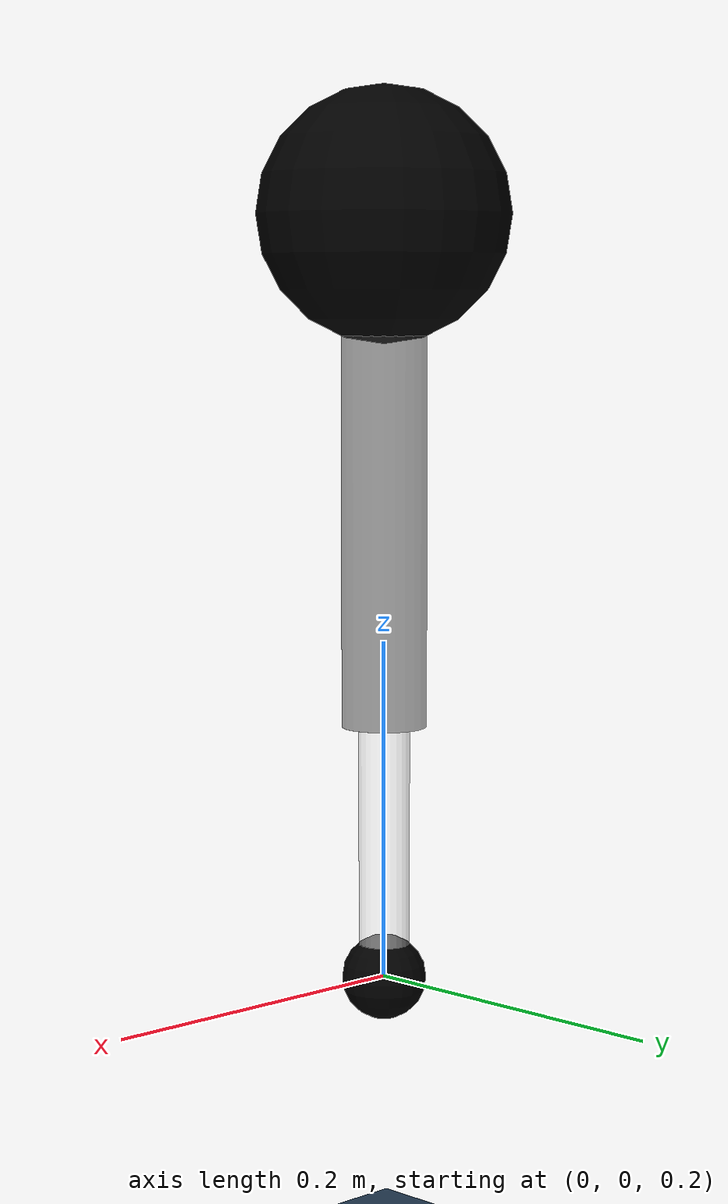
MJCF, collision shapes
<?xml version="1.0" encoding="utf-8"?>
<mujoco model="3D_SLIP">

    <!-- TODO: mess with iterations and ls_iterations -->
    <option timestep="0.002" iterations="3" ls_iterations="5" solver="Newton">
        <flag eulerdamp="disable"/>
    </option>

    <!-- Specify the light settings -->
    <visual>
        <headlight diffuse="0.6 0.6 0.6" ambient="0.3 0.3 0.3" specular="0 0 0"/>
        <rgba haze="0.15 0.25 0.35 1"/>
        <global azimuth="150" elevation="-20" offwidth="1920" offheight="1080"/>
    </visual>

    <!-- List the location of all meshes -->
    <asset>
        <mesh file="./meshes/Body.STL" name="com"/>
        <texture type="skybox" builtin="gradient" rgb1="0.3 0.5 0.7" rgb2="0 0 0" width="512" height="3072"/>
        <texture type="2d" name="groundplane" builtin="checker" mark="edge" rgb1="0.2 0.3 0.4" rgb2="0.1 0.2 0.3"
        markrgb="0.8 0.8 0.8" width="300" height="300"/>
        <material name="groundplane" texture="groundplane" texuniform="true" texrepeat="5 5" reflectance="0.2"/>
    </asset>

    <!-- Set the angles to be in radians -->
    <compiler angle="radian" autolimits="true" eulerseq="zyx"/>

    <!-- Default properties -->
    <default>
        <geom conaffinity="1" contype="1" density="0.5" friction="0.8 0.8 0.8"/>
        <default class="visual">
            <geom conaffinity="0" contype="0"/>
        </default>
    </default>

    <!-- Bodies -->
    <worldbody>
        <!-- Ground -->
        <geom name="plane" type="plane" size="0.0 0.0 0.125" material="groundplane"/>

        <!-- COM Body -->
        <body name="com" pos="0 0 0.65">
            <camera name="track" mode="targetbody" pos="0 -3 0.3" xyaxes="1 0 0 0 0 1" target="com"/>
            <joint name="root_x" type="slide" axis="1 0 0"/>
            <joint name="root_y" type="slide" axis="0 1 0"/>
            <joint name="root_z" type="slide" axis="0 0 1"/>

            <!-- A light that tracks the CoM -->
            <light pos="0 0 3" dir="0 0 -1" directional="false" mode="trackcom"/>

            <!-- ixx iyy izz ixy ixz iyz-->

            <!-- CoM has sphere collisions but a fancy mesh visual-->
            <geom name="com_mesh" class="visual" mesh="com" type="mesh" rgba="1.0 0.424 0.047 1.0" />
            <geom name="com_collision" type="sphere" density="1.0" size="0.075" rgba="0.0 0.0 0.0 0.0" />

            <!-- Upper Leg -->
            <body name="leg_upper" pos="0 0 -0.15">
                <joint name="leg_roll" axis="1 0 0" pos="0 0 0.15" limited="true" range="-1.2 1.2"/>
                <joint name="leg_pitch" axis="0 1 0" pos="0 0 0.15" limited="true" range="-1.2 1.2"/>
                <geom name="leg_upper" class="visual" type="cylinder" density="0.5" size="0.025 0.15" rgba="0.2 0.2 0.2 0.5"/>

                <!-- Lower Leg -->
                <body name="leg_lower" pos="0 0 -0.15">
                    <!-- Spring stiffness here? -->
                    <joint name="leg_prismatic" axis="0 0 1" type="slide" limited="true" range="-0.15 0.15"/>
                    <geom name="leg_lower" class="visual" type="cylinder" density="0.5" size="0.015 0.15" rgba="1.0 1.0 1.0 0.5"/>

                    <!-- Foot -->
                    <body name="foot" pos="0 0 -0.15">
                        <geom name="foot_sphere" type="sphere" density="0.5" size="0.025" rgba="0 0 0 1.0"/>
                    </body>

                </body>
            </body>
        </body>
    </worldbody>

    <!-- Actuators -->
    <actuator>
        <position name="leg_pitch" ctrllimited="true" ctrlrange="-1.0 1.0" joint="leg_pitch" kp="0.01" dampratio="1"/>
        <position name="leg_roll" ctrllimited="true" ctrlrange="-1.0 1.0" joint="leg_roll" kp="0.01" dampratio="1"/>
        <position name="leg_prismatic" ctrllimited="true" ctrlrange="-0.15 0.15" joint="leg_prismatic" kp="0.5" dampratio="1"/>
    </actuator>

</mujoco>
